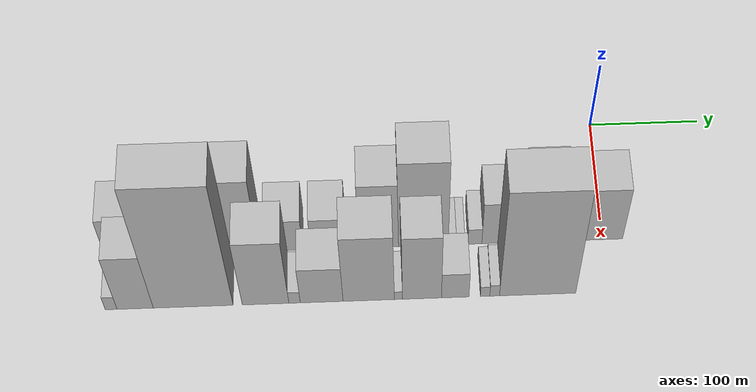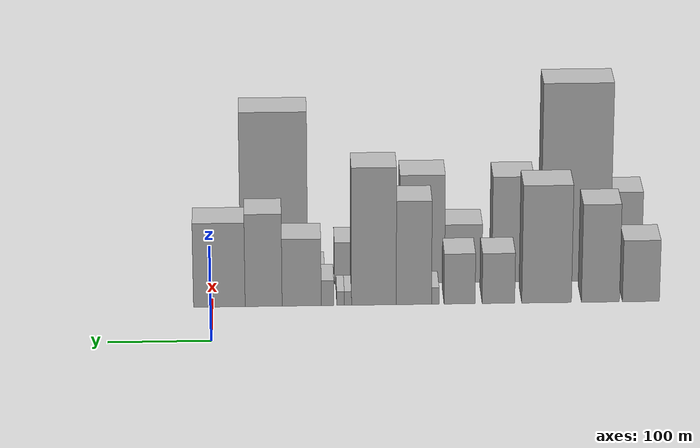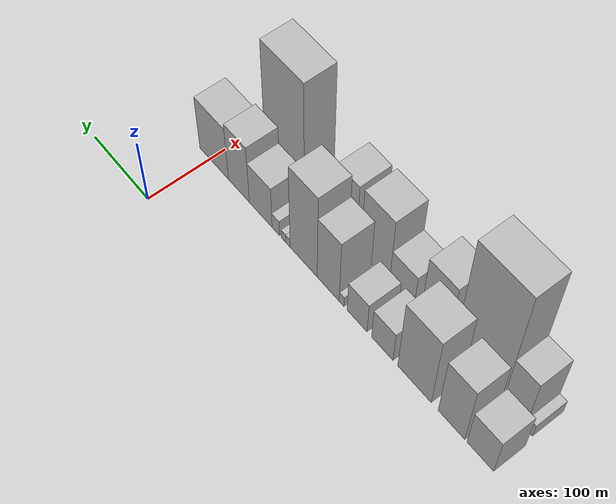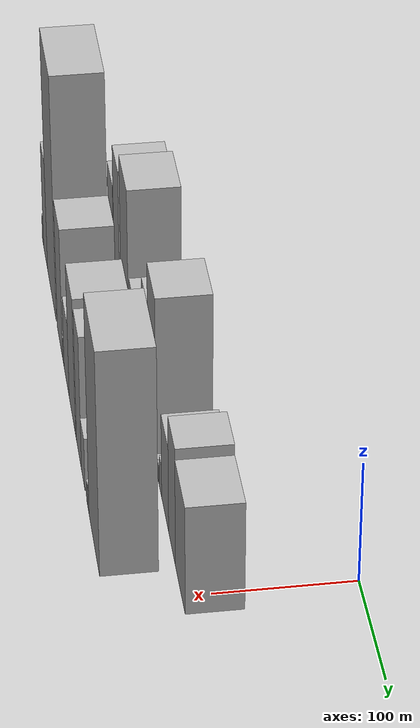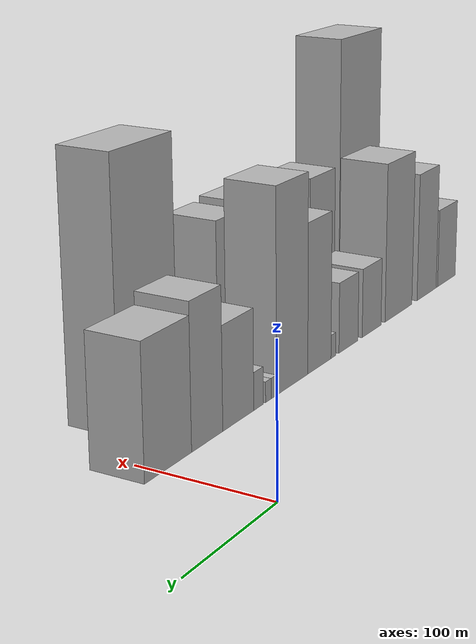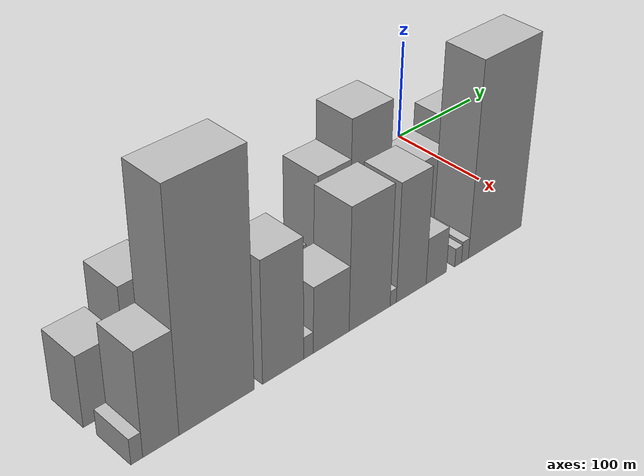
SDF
<sdf version="1.6">
 <world name="default">
  <model name="building_1">
   <static>1</static>
   <pose>100.0000 -425.5980 0 0.000000 0.000000 0.000000</pose>
   <link name="link">
    <pose>0 0 33.00 0 0 0</pose>
    <collision name="collision"><geometry><box><size>40.0000 36.8039 66.0000</size></box></geometry></collision>
    <visual name="visual">
     <cast_shadows>0</cast_shadows>
     <geometry><box><size>40.0000 36.8039 66.0000</size></box></geometry>
     <material>
      <script>
       <uri>model://HANNAS_wall/materials/scripts</uri>
       <uri>model://HANNAS_wall/materials/textures</uri>
       <name>vrc/HANNAS_wall</name>
      </script>
     </material>
    </visual>
   </link>
  </model>
  <model name="building_2">
   <static>1</static>
   <pose>100.0000 -385.3011 0 0.000000 0.000000 0.000000</pose>
   <link name="link">
    <pose>0 0 52.50 0 0 0</pose>
    <collision name="collision"><geometry><box><size>40.0000 37.7899 105.0000</size></box></geometry></collision>
    <visual name="visual">
     <cast_shadows>0</cast_shadows>
     <geometry><box><size>40.0000 37.7899 105.0000</size></box></geometry>
     <material>
      <script>
       <uri>model://HANNAS_wall/materials/scripts</uri>
       <uri>model://HANNAS_wall/materials/textures</uri>
       <name>vrc/HANNAS_wall</name>
      </script>
     </material>
    </visual>
   </link>
  </model>
  <model name="building_3">
   <static>1</static>
   <pose>100.0000 -331.7392 0 0.000000 0.000000 0.000000</pose>
   <link name="link">
    <pose>0 0 63.00 0 0 0</pose>
    <collision name="collision"><geometry><box><size>40.0000 49.3339 126.0000</size></box></geometry></collision>
    <visual name="visual">
     <cast_shadows>0</cast_shadows>
     <geometry><box><size>40.0000 49.3339 126.0000</size></box></geometry>
     <material>
      <script>
       <uri>model://HANNAS_wall/materials/scripts</uri>
       <uri>model://HANNAS_wall/materials/textures</uri>
       <name>vrc/HANNAS_wall</name>
      </script>
     </material>
    </visual>
   </link>
  </model>
  <model name="building_4">
   <static>1</static>
   <pose>100.0000 -283.8848 0 0.000000 0.000000 0.000000</pose>
   <link name="link">
    <pose>0 0 27.00 0 0 0</pose>
    <collision name="collision"><geometry><box><size>40.0000 32.3749 54.0000</size></box></geometry></collision>
    <visual name="visual">
     <cast_shadows>0</cast_shadows>
     <geometry><box><size>40.0000 32.3749 54.0000</size></box></geometry>
     <material>
      <script>
       <uri>model://HANNAS_wall/materials/scripts</uri>
       <uri>model://HANNAS_wall/materials/textures</uri>
       <name>vrc/HANNAS_wall</name>
      </script>
     </material>
    </visual>
   </link>
  </model>
  <model name="building_5">
   <static>1</static>
   <pose>100.0000 -245.2788 0 0.000000 0.000000 0.000000</pose>
   <link name="link">
    <pose>0 0 27.00 0 0 0</pose>
    <collision name="collision"><geometry><box><size>40.0000 30.8370 54.0000</size></box></geometry></collision>
    <visual name="visual">
     <cast_shadows>0</cast_shadows>
     <geometry><box><size>40.0000 30.8370 54.0000</size></box></geometry>
     <material>
      <script>
       <uri>model://HANNAS_wall/materials/scripts</uri>
       <uri>model://HANNAS_wall/materials/textures</uri>
       <name>vrc/HANNAS_wall</name>
      </script>
     </material>
    </visual>
   </link>
  </model>
  <model name="building_6">
   <static>1</static>
   <pose>100.0000 -221.1470 0 0.000000 0.000000 0.000000</pose>
   <link name="link">
    <pose>0 0 9.00 0 0 0</pose>
    <collision name="collision"><geometry><box><size>40.0000 7.4267 18.0000</size></box></geometry></collision>
    <visual name="visual">
     <cast_shadows>0</cast_shadows>
     <geometry><box><size>40.0000 7.4267 18.0000</size></box></geometry>
     <material>
      <script>
       <uri>model://HANNAS_wall/materials/scripts</uri>
       <uri>model://HANNAS_wall/materials/textures</uri>
       <name>vrc/HANNAS_wall</name>
      </script>
     </material>
    </visual>
   </link>
  </model>
  <model name="building_7">
   <static>1</static>
   <pose>100.0000 -199.9410 0 0.000000 0.000000 0.000000</pose>
   <link name="link">
    <pose>0 0 55.50 0 0 0</pose>
    <collision name="collision"><geometry><box><size>40.0000 34.9854 111.0000</size></box></geometry></collision>
    <visual name="visual">
     <cast_shadows>0</cast_shadows>
     <geometry><box><size>40.0000 34.9854 111.0000</size></box></geometry>
     <material>
      <script>
       <uri>model://HANNAS_wall/materials/scripts</uri>
       <uri>model://HANNAS_wall/materials/textures</uri>
       <name>vrc/HANNAS_wall</name>
      </script>
     </material>
    </visual>
   </link>
  </model>
  <model name="building_8">
   <static>1</static>
   <pose>100.0000 -160.2202 0 0.000000 0.000000 0.000000</pose>
   <link name="link">
    <pose>0 0 73.50 0 0 0</pose>
    <collision name="collision"><geometry><box><size>40.0000 44.4563 147.0000</size></box></geometry></collision>
    <visual name="visual">
     <cast_shadows>0</cast_shadows>
     <geometry><box><size>40.0000 44.4563 147.0000</size></box></geometry>
     <material>
      <script>
       <uri>model://HANNAS_wall/materials/scripts</uri>
       <uri>model://HANNAS_wall/materials/textures</uri>
       <name>vrc/HANNAS_wall</name>
      </script>
     </material>
    </visual>
   </link>
  </model>
  <model name="building_9">
   <static>1</static>
   <pose>100.0000 -134.4375 0 0.000000 0.000000 0.000000</pose>
   <link name="link">
    <pose>0 0 7.50 0 0 0</pose>
    <collision name="collision"><geometry><box><size>40.0000 7.1090 15.0000</size></box></geometry></collision>
    <visual name="visual">
     <cast_shadows>0</cast_shadows>
     <geometry><box><size>40.0000 7.1090 15.0000</size></box></geometry>
     <material>
      <script>
       <uri>model://HANNAS_wall/materials/scripts</uri>
       <uri>model://HANNAS_wall/materials/textures</uri>
       <name>vrc/HANNAS_wall</name>
      </script>
     </material>
    </visual>
   </link>
  </model>
  <model name="building_10">
   <static>1</static>
   <pose>100.0000 -127.1507 0 0.000000 0.000000 0.000000</pose>
   <link name="link">
    <pose>0 0 7.50 0 0 0</pose>
    <collision name="collision"><geometry><box><size>40.0000 7.4647 15.0000</size></box></geometry></collision>
    <visual name="visual">
     <cast_shadows>0</cast_shadows>
     <geometry><box><size>40.0000 7.4647 15.0000</size></box></geometry>
     <material>
      <script>
       <uri>model://HANNAS_wall/materials/scripts</uri>
       <uri>model://HANNAS_wall/materials/textures</uri>
       <name>vrc/HANNAS_wall</name>
      </script>
     </material>
    </visual>
   </link>
  </model>
  <model name="building_11">
   <static>1</static>
   <pose>100.0000 -114.1948 0 0.000000 0.000000 0.000000</pose>
   <link name="link">
    <pose>0 0 13.50 0 0 0</pose>
    <collision name="collision"><geometry><box><size>40.0000 12.4471 27.0000</size></box></geometry></collision>
    <visual name="visual">
     <cast_shadows>0</cast_shadows>
     <geometry><box><size>40.0000 12.4471 27.0000</size></box></geometry>
     <material>
      <script>
       <uri>model://HANNAS_wall/materials/scripts</uri>
       <uri>model://HANNAS_wall/materials/textures</uri>
       <name>vrc/HANNAS_wall</name>
      </script>
     </material>
    </visual>
   </link>
  </model>
  <model name="building_12">
   <static>1</static>
   <pose>100.0000 -88.6008 0 0.000000 0.000000 0.000000</pose>
   <link name="link">
    <pose>0 0 36.00 0 0 0</pose>
    <collision name="collision"><geometry><box><size>40.0000 38.7409 72.0000</size></box></geometry></collision>
    <visual name="visual">
     <cast_shadows>0</cast_shadows>
     <geometry><box><size>40.0000 38.7409 72.0000</size></box></geometry>
     <material>
      <script>
       <uri>model://HANNAS_wall/materials/scripts</uri>
       <uri>model://HANNAS_wall/materials/textures</uri>
       <name>vrc/HANNAS_wall</name>
      </script>
     </material>
    </visual>
   </link>
  </model>
  <model name="building_13">
   <static>1</static>
   <pose>100.0000 -50.9353 0 0.000000 0.000000 0.000000</pose>
   <link name="link">
    <pose>0 0 49.50 0 0 0</pose>
    <collision name="collision"><geometry><box><size>40.0000 36.5901 99.0000</size></box></geometry></collision>
    <visual name="visual">
     <cast_shadows>0</cast_shadows>
     <geometry><box><size>40.0000 36.5901 99.0000</size></box></geometry>
     <material>
      <script>
       <uri>model://HANNAS_wall/materials/scripts</uri>
       <uri>model://HANNAS_wall/materials/textures</uri>
       <name>vrc/HANNAS_wall</name>
      </script>
     </material>
    </visual>
   </link>
  </model>
  <model name="building_14">
   <static>1</static>
   <pose>100.0000 -7.1161 0 0.000000 0.000000 0.000000</pose>
   <link name="link">
    <pose>0 0 45.00 0 0 0</pose>
    <collision name="collision"><geometry><box><size>40.0000 51.0484 90.0000</size></box></geometry></collision>
    <visual name="visual">
     <cast_shadows>0</cast_shadows>
     <geometry><box><size>40.0000 51.0484 90.0000</size></box></geometry>
     <material>
      <script>
       <uri>model://HANNAS_wall/materials/scripts</uri>
       <uri>model://HANNAS_wall/materials/textures</uri>
       <name>vrc/HANNAS_wall</name>
      </script>
     </material>
    </visual>
   </link>
  </model>
  <model name="building_27">
   <static>1</static>
   <pose>152.0000 -435.8978 0 0.000000 0.000000 0.000000</pose>
   <link name="link">
    <pose>0 0 12.00 0 0 0</pose>
    <collision name="collision"><geometry><box><size>40.0000 10.2043 24.0000</size></box></geometry></collision>
    <visual name="visual">
     <cast_shadows>0</cast_shadows>
     <geometry><box><size>40.0000 10.2043 24.0000</size></box></geometry>
     <material>
      <script>
       <uri>model://HANNAS_wall/materials/scripts</uri>
       <uri>model://HANNAS_wall/materials/textures</uri>
       <name>vrc/HANNAS_wall</name>
      </script>
     </material>
    </visual>
   </link>
  </model>
  <model name="building_28">
   <static>1</static>
   <pose>152.0000 -414.9461 0 0.000000 0.000000 0.000000</pose>
   <link name="link">
    <pose>0 0 48.00 0 0 0</pose>
    <collision name="collision"><geometry><box><size>40.0000 31.6992 96.0000</size></box></geometry></collision>
    <visual name="visual">
     <cast_shadows>0</cast_shadows>
     <geometry><box><size>40.0000 31.6992 96.0000</size></box></geometry>
     <material>
      <script>
       <uri>model://HANNAS_wall/materials/scripts</uri>
       <uri>model://HANNAS_wall/materials/textures</uri>
       <name>vrc/HANNAS_wall</name>
      </script>
     </material>
    </visual>
   </link>
  </model>
  <model name="building_29">
   <static>1</static>
   <pose>152.0000 -364.1660 0 0.000000 0.000000 0.000000</pose>
   <link name="link">
    <pose>0 0 106.50 0 0 0</pose>
    <collision name="collision"><geometry><box><size>40.0000 69.8610 213.0000</size></box></geometry></collision>
    <visual name="visual">
     <cast_shadows>0</cast_shadows>
     <geometry><box><size>40.0000 69.8610 213.0000</size></box></geometry>
     <material>
      <script>
       <uri>model://HANNAS_wall/materials/scripts</uri>
       <uri>model://HANNAS_wall/materials/textures</uri>
       <name>vrc/HANNAS_wall</name>
      </script>
     </material>
    </visual>
   </link>
  </model>
  <model name="building_30">
   <static>1</static>
   <pose>152.0000 -300.8264 0 0.000000 0.000000 0.000000</pose>
   <link name="link">
    <pose>0 0 57.00 0 0 0</pose>
    <collision name="collision"><geometry><box><size>40.0000 40.8181 114.0000</size></box></geometry></collision>
    <visual name="visual">
     <cast_shadows>0</cast_shadows>
     <geometry><box><size>40.0000 40.8181 114.0000</size></box></geometry>
     <material>
      <script>
       <uri>model://HANNAS_wall/materials/scripts</uri>
       <uri>model://HANNAS_wall/materials/textures</uri>
       <name>vrc/HANNAS_wall</name>
      </script>
     </material>
    </visual>
   </link>
  </model>
  <model name="building_31">
   <static>1</static>
   <pose>152.0000 -275.4124 0 0.000000 0.000000 0.000000</pose>
   <link name="link">
    <pose>0 0 10.50 0 0 0</pose>
    <collision name="collision"><geometry><box><size>40.0000 10.0100 21.0000</size></box></geometry></collision>
    <visual name="visual">
     <cast_shadows>0</cast_shadows>
     <geometry><box><size>40.0000 10.0100 21.0000</size></box></geometry>
     <material>
      <script>
       <uri>model://HANNAS_wall/materials/scripts</uri>
       <uri>model://HANNAS_wall/materials/textures</uri>
       <name>vrc/HANNAS_wall</name>
      </script>
     </material>
    </visual>
   </link>
  </model>
  <model name="building_32">
   <static>1</static>
   <pose>152.0000 -251.6463 0 0.000000 0.000000 0.000000</pose>
   <link name="link">
    <pose>0 0 31.50 0 0 0</pose>
    <collision name="collision"><geometry><box><size>40.0000 37.5222 63.0000</size></box></geometry></collision>
    <visual name="visual">
     <cast_shadows>0</cast_shadows>
     <geometry><box><size>40.0000 37.5222 63.0000</size></box></geometry>
     <material>
      <script>
       <uri>model://HANNAS_wall/materials/scripts</uri>
       <uri>model://HANNAS_wall/materials/textures</uri>
       <name>vrc/HANNAS_wall</name>
      </script>
     </material>
    </visual>
   </link>
  </model>
  <model name="building_33">
   <static>1</static>
   <pose>152.0000 -210.3397 0 0.000000 0.000000 0.000000</pose>
   <link name="link">
    <pose>0 0 58.50 0 0 0</pose>
    <collision name="collision"><geometry><box><size>40.0000 45.0910 117.0000</size></box></geometry></collision>
    <visual name="visual">
     <cast_shadows>0</cast_shadows>
     <geometry><box><size>40.0000 45.0910 117.0000</size></box></geometry>
     <material>
      <script>
       <uri>model://HANNAS_wall/materials/scripts</uri>
       <uri>model://HANNAS_wall/materials/textures</uri>
       <name>vrc/HANNAS_wall</name>
      </script>
     </material>
    </visual>
   </link>
  </model>
  <model name="building_34">
   <static>1</static>
   <pose>152.0000 -184.2583 0 0.000000 0.000000 0.000000</pose>
   <link name="link">
    <pose>0 0 7.50 0 0 0</pose>
    <collision name="collision"><geometry><box><size>40.0000 7.0717 15.0000</size></box></geometry></collision>
    <visual name="visual">
     <cast_shadows>0</cast_shadows>
     <geometry><box><size>40.0000 7.0717 15.0000</size></box></geometry>
     <material>
      <script>
       <uri>model://HANNAS_wall/materials/scripts</uri>
       <uri>model://HANNAS_wall/materials/textures</uri>
       <name>vrc/HANNAS_wall</name>
      </script>
     </material>
    </visual>
   </link>
  </model>
  <model name="building_35">
   <static>1</static>
   <pose>152.0000 -163.5564 0 0.000000 0.000000 0.000000</pose>
   <link name="link">
    <pose>0 0 57.00 0 0 0</pose>
    <collision name="collision"><geometry><box><size>40.0000 34.3320 114.0000</size></box></geometry></collision>
    <visual name="visual">
     <cast_shadows>0</cast_shadows>
     <geometry><box><size>40.0000 34.3320 114.0000</size></box></geometry>
     <material>
      <script>
       <uri>model://HANNAS_wall/materials/scripts</uri>
       <uri>model://HANNAS_wall/materials/textures</uri>
       <name>vrc/HANNAS_wall</name>
      </script>
     </material>
    </visual>
   </link>
  </model>
  <model name="building_36">
   <static>1</static>
   <pose>152.0000 -134.2992 0 0.000000 0.000000 0.000000</pose>
   <link name="link">
    <pose>0 0 22.50 0 0 0</pose>
    <collision name="collision"><geometry><box><size>40.0000 24.1825 45.0000</size></box></geometry></collision>
    <visual name="visual">
     <cast_shadows>0</cast_shadows>
     <geometry><box><size>40.0000 24.1825 45.0000</size></box></geometry>
     <material>
      <script>
       <uri>model://HANNAS_wall/materials/scripts</uri>
       <uri>model://HANNAS_wall/materials/textures</uri>
       <name>vrc/HANNAS_wall</name>
      </script>
     </material>
    </visual>
   </link>
  </model>
  <model name="building_37">
   <static>1</static>
   <pose>152.0000 -108.0613 0 0.000000 0.000000 0.000000</pose>
   <link name="link">
    <pose>0 0 9.00 0 0 0</pose>
    <collision name="collision"><geometry><box><size>40.0000 8.2933 18.0000</size></box></geometry></collision>
    <visual name="visual">
     <cast_shadows>0</cast_shadows>
     <geometry><box><size>40.0000 8.2933 18.0000</size></box></geometry>
     <material>
      <script>
       <uri>model://HANNAS_wall/materials/scripts</uri>
       <uri>model://HANNAS_wall/materials/textures</uri>
       <name>vrc/HANNAS_wall</name>
      </script>
     </material>
    </visual>
   </link>
  </model>
  <model name="building_38">
   <static>1</static>
   <pose>152.0000 -99.6352 0 0.000000 0.000000 0.000000</pose>
   <link name="link">
    <pose>0 0 10.50 0 0 0</pose>
    <collision name="collision"><geometry><box><size>40.0000 8.5588 21.0000</size></box></geometry></collision>
    <visual name="visual">
     <cast_shadows>0</cast_shadows>
     <geometry><box><size>40.0000 8.5588 21.0000</size></box></geometry>
     <material>
      <script>
       <uri>model://HANNAS_wall/materials/scripts</uri>
       <uri>model://HANNAS_wall/materials/textures</uri>
       <name>vrc/HANNAS_wall</name>
      </script>
     </material>
    </visual>
   </link>
  </model>
  <model name="building_39">
   <static>1</static>
   <pose>152.0000 -61.7394 0 0.000000 0.000000 0.000000</pose>
   <link name="link">
    <pose>0 0 93.00 0 0 0</pose>
    <collision name="collision"><geometry><box><size>40.0000 67.2329 186.0000</size></box></geometry></collision>
    <visual name="visual">
     <cast_shadows>0</cast_shadows>
     <geometry><box><size>40.0000 67.2329 186.0000</size></box></geometry>
     <material>
      <script>
       <uri>model://HANNAS_wall/materials/scripts</uri>
       <uri>model://HANNAS_wall/materials/textures</uri>
       <name>vrc/HANNAS_wall</name>
      </script>
     </material>
    </visual>
   </link>
  </model>
 </world>
</sdf>
